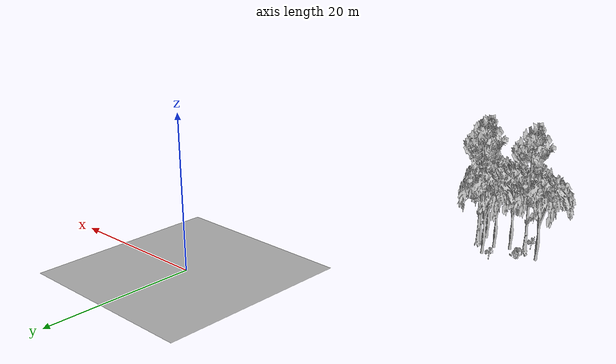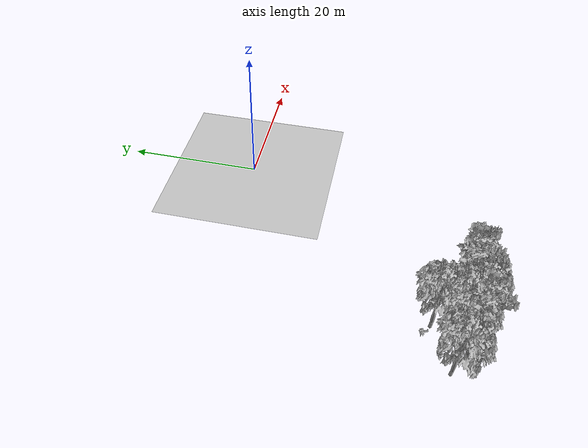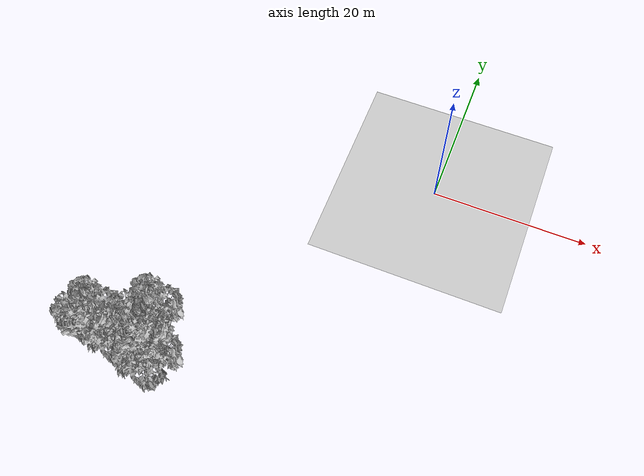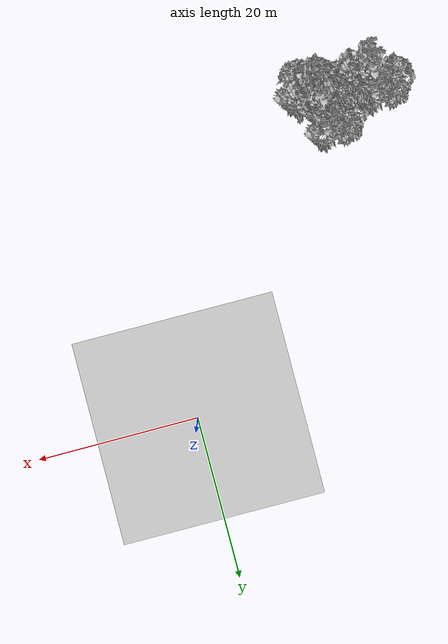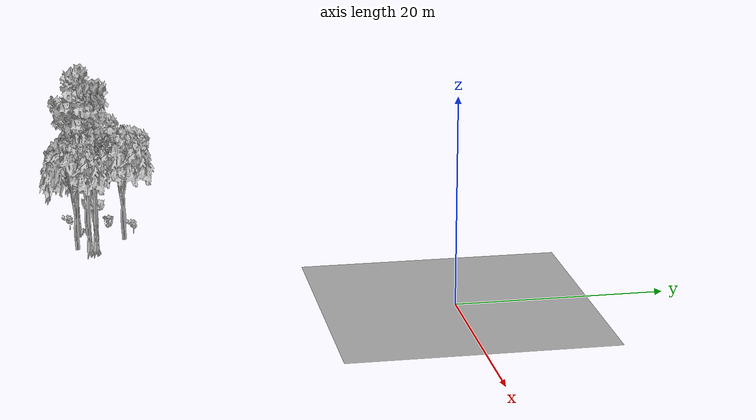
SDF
<sdf version="1.7">
 <world name="default">
  <model name="ground_plane">
   <static>1</static>
   <link name="link">
    <collision name="collision">
     <pose>-50 0 0 0 -0 0</pose>
     <geometry><plane><normal>0 0 1</normal><size>80 80</size></plane></geometry>
     <surface><contact><ode><min_depth>0.01</min_depth><max_vel>0</max_vel></ode></contact></surface>
    </collision>
    <visual name="grass">
     <cast_shadows>0</cast_shadows>
     <geometry>
      <mesh>
       <scale>0.46714285714285714 0.46714285714285714 0.1</scale>
       <uri>file://grass_plane/meshes/grass_plane.dae</uri>
      </mesh>
     </geometry>
    </visual>
   </link>
  </model>
  <model name="Tree 72">
   <static>1</static>
   <pose>-21.22406914020988 -32.71639530435088 0 1.57079 -0 0</pose>
   <link name="link">
    <collision name="collision">
     <geometry><mesh><scale>3.5 5 3.5</scale><uri>model://tree_9/meshes/tree_9.obj</uri></mesh></geometry>
    </collision>
    <visual name="visual">
     <geometry><mesh><scale>3.5 5 3.5</scale><uri>model://tree_9/meshes/tree_9.obj</uri></mesh></geometry>
    </visual>
   </link>
  </model>
  <model name="Tree 163">
   <static>1</static>
   <pose>-30.20469136715721 -31.836480977436636 0 1.57079 -0 0</pose>
   <link name="link">
    <collision name="collision">
     <geometry><mesh><scale>3.5 5 3.5</scale><uri>model://tree_2/meshes/tree_2.obj</uri></mesh></geometry>
    </collision>
    <visual name="visual">
     <geometry><mesh><scale>3.5 5 3.5</scale><uri>model://tree_2/meshes/tree_2.obj</uri></mesh></geometry>
    </visual>
   </link>
  </model>
  <model name="Tree 230">
   <static>1</static>
   <pose>-21.650488542934223 -33.951757161729276 0 1.57079 -0 0</pose>
   <link name="link">
    <collision name="collision">
     <geometry><mesh><scale>3.5 5 3.5</scale><uri>model://tree_2/meshes/tree_2.obj</uri></mesh></geometry>
    </collision>
    <visual name="visual">
     <geometry><mesh><scale>3.5 5 3.5</scale><uri>model://tree_2/meshes/tree_2.obj</uri></mesh></geometry>
    </visual>
   </link>
  </model>
  <model name="Tree 491">
   <static>1</static>
   <pose>-25.965500335381286 -32.683532037811986 0 1.57079 -0 0</pose>
   <link name="link">
    <collision name="collision">
     <geometry><mesh><scale>3.5 5 3.5</scale><uri>model://tree_2/meshes/tree_2.obj</uri></mesh></geometry>
    </collision>
    <visual name="visual">
     <geometry><mesh><scale>3.5 5 3.5</scale><uri>model://tree_2/meshes/tree_2.obj</uri></mesh></geometry>
    </visual>
   </link>
  </model>
  <model name="Tree 493">
   <static>1</static>
   <pose>-24.028199239498303 -29.13290849187848 0 1.57079 -0 0</pose>
   <link name="link">
    <collision name="collision">
     <geometry><mesh><scale>3.5 5 3.5</scale><uri>model://tree_2/meshes/tree_2.obj</uri></mesh></geometry>
    </collision>
    <visual name="visual">
     <geometry><mesh><scale>3.5 5 3.5</scale><uri>model://tree_2/meshes/tree_2.obj</uri></mesh></geometry>
    </visual>
   </link>
  </model>
  <model name="Tree 613">
   <static>1</static>
   <pose>-24.069838039331373 -31.90954191008843 0 1.57079 -0 0</pose>
   <link name="link">
    <collision name="collision">
     <geometry><mesh><scale>3.5 5 3.5</scale><uri>model://tree_2/meshes/tree_2.obj</uri></mesh></geometry>
    </collision>
    <visual name="visual">
     <geometry><mesh><scale>3.5 5 3.5</scale><uri>model://tree_2/meshes/tree_2.obj</uri></mesh></geometry>
    </visual>
   </link>
  </model>
  <model name="Tree 616">
   <static>1</static>
   <pose>-21.36782649198191 -32.06790645775422 0 1.57079 -0 0</pose>
   <link name="link">
    <collision name="collision">
     <geometry><mesh><scale>3.5 5 3.5</scale><uri>model://tree_9/meshes/tree_9.obj</uri></mesh></geometry>
    </collision>
    <visual name="visual">
     <geometry><mesh><scale>3.5 5 3.5</scale><uri>model://tree_9/meshes/tree_9.obj</uri></mesh></geometry>
    </visual>
   </link>
  </model>
  <model name="Tree 627">
   <static>1</static>
   <pose>-27.534074191002965 -33.56092006208702 0 1.57079 -0 0</pose>
   <link name="link">
    <collision name="collision">
     <geometry><mesh><scale>3.5 5 3.5</scale><uri>model://tree_9/meshes/tree_9.obj</uri></mesh></geometry>
    </collision>
    <visual name="visual">
     <geometry><mesh><scale>3.5 5 3.5</scale><uri>model://tree_9/meshes/tree_9.obj</uri></mesh></geometry>
    </visual>
   </link>
  </model>
  <model name="Bush 55">
   <static>1</static>
   <pose>-28.040202460224236 -30.51904497104429 0 1.57079 -0 0</pose>
   <link name="link">
    <collision name="collision">
     <geometry><mesh><scale>2 2 2</scale><uri>model://bush_4/meshes/bush_4.obj</uri></mesh></geometry>
     <surface><contact><collide_without_contact>false</collide_without_contact></contact></surface>
    </collision>
    <visual name="visual">
     <geometry><mesh><scale>2 2 2</scale><uri>model://bush_4/meshes/bush_4.obj</uri></mesh></geometry>
    </visual>
   </link>
  </model>
  <model name="Bush 185">
   <static>1</static>
   <pose>-27.8728429094367 -34.39161315616043 0 1.57079 -0 0</pose>
   <link name="link">
    <collision name="collision">
     <geometry><mesh><scale>2 2 2</scale><uri>model://bush_5/meshes/bush_5.obj</uri></mesh></geometry>
     <surface><contact><collide_without_contact>false</collide_without_contact></contact></surface>
    </collision>
    <visual name="visual">
     <geometry><mesh><scale>2 2 2</scale><uri>model://bush_5/meshes/bush_5.obj</uri></mesh></geometry>
    </visual>
   </link>
  </model>
  <model name="Bush 251">
   <static>1</static>
   <pose>-26.984282540213226 -32.98951634888902 0 1.57079 -0 0</pose>
   <link name="link">
    <collision name="collision">
     <geometry><mesh><scale>2 2 2</scale><uri>model://bush_2/meshes/bush_2.obj</uri></mesh></geometry>
     <surface><contact><collide_without_contact>false</collide_without_contact></contact></surface>
    </collision>
    <visual name="visual">
     <geometry><mesh><scale>2 2 2</scale><uri>model://bush_2/meshes/bush_2.obj</uri></mesh></geometry>
    </visual>
   </link>
  </model>
  <model name="Bush 330">
   <static>1</static>
   <pose>-25.531803221678572 -28.036389681943 0 1.57079 -0 0</pose>
   <link name="link">
    <collision name="collision">
     <geometry><mesh><scale>2 2 2</scale><uri>model://bush_5/meshes/bush_5.obj</uri></mesh></geometry>
     <surface><contact><collide_without_contact>false</collide_without_contact></contact></surface>
    </collision>
    <visual name="visual">
     <geometry><mesh><scale>2 2 2</scale><uri>model://bush_5/meshes/bush_5.obj</uri></mesh></geometry>
    </visual>
   </link>
  </model>
 </world>
</sdf>
